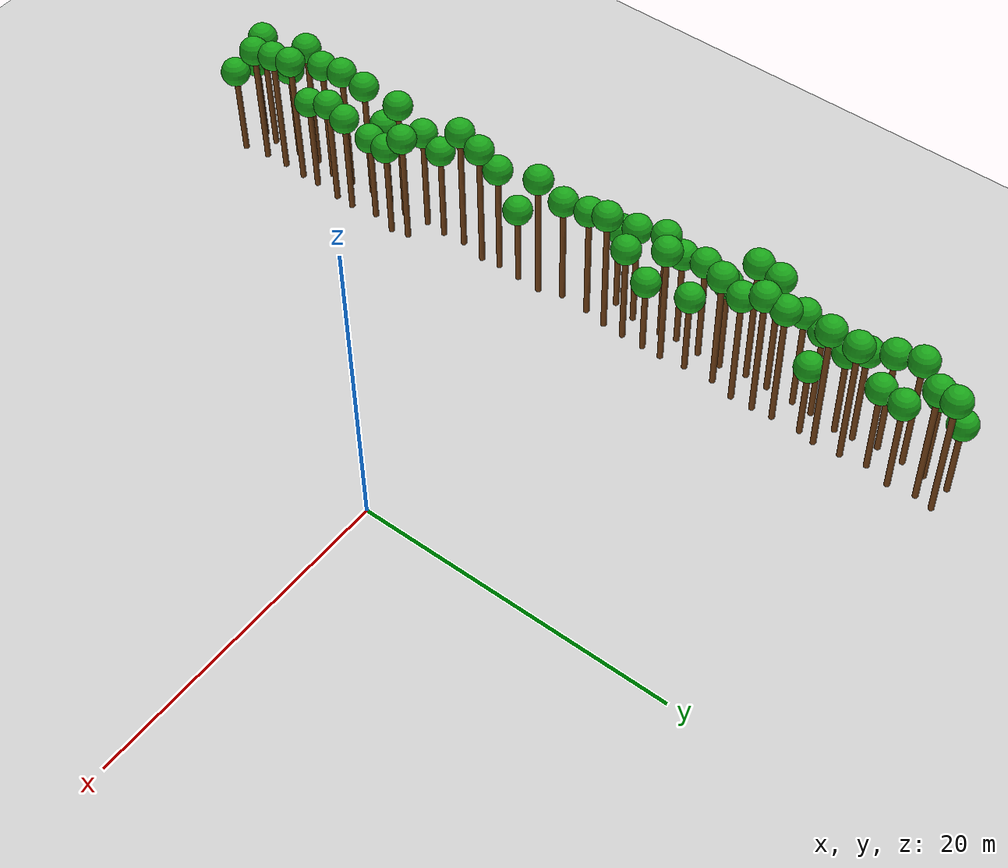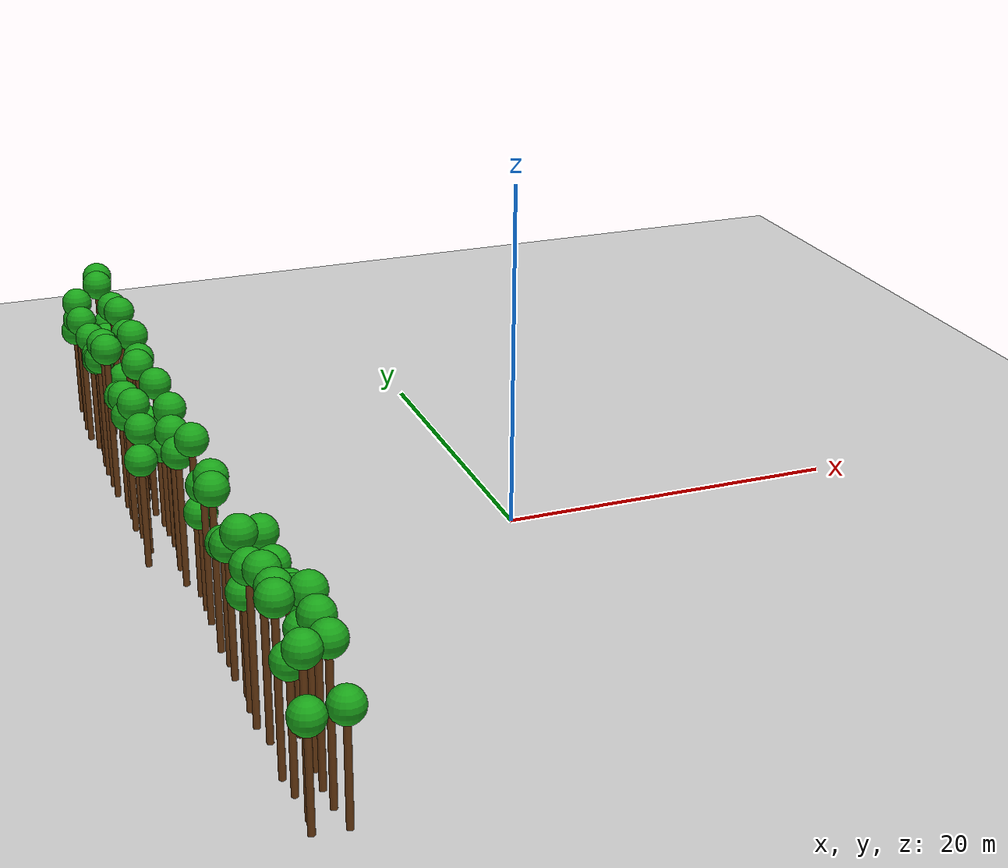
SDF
<sdf version="1.6">
 <world name="forest_world">
  <include><uri>model://sun</uri></include>
  <include><uri>model://ground_plane</uri></include>
  <model name="tree_120">
   <static>true</static>
   <link name="trunk">
    <collision name="collision">
     <pose>-20.72 1.77 2.95 0 0 0</pose>
     <geometry><cylinder><radius>0.18</radius><length>5.91</length></cylinder></geometry>
    </collision>
    <visual name="trunk_visual">
     <pose>-20.72 1.77 2.95 0 0 0</pose>
     <geometry><cylinder><radius>0.18</radius><length>5.91</length></cylinder></geometry>
     <material><ambient>0.35 0.20 0.05 1</ambient><diffuse>0.45 0.25 0.08 1</diffuse></material>
    </visual>
    <visual name="leaf_visual">
     <pose>-20.72 1.77 6.36 0 0 0</pose>
     <geometry><sphere><radius>0.9</radius></sphere></geometry>
     <material><ambient>0.05 0.45 0.05 1</ambient><diffuse>0.10 0.65 0.10 1</diffuse></material>
    </visual>
   </link>
  </model>
  <model name="tree_121">
   <static>true</static>
   <link name="trunk">
    <collision name="collision">
     <pose>-20.34 3.26 3.53 0 0 0</pose>
     <geometry><cylinder><radius>0.18</radius><length>7.06</length></cylinder></geometry>
    </collision>
    <visual name="trunk_visual">
     <pose>-20.34 3.26 3.53 0 0 0</pose>
     <geometry><cylinder><radius>0.18</radius><length>7.06</length></cylinder></geometry>
     <material><ambient>0.35 0.20 0.05 1</ambient><diffuse>0.45 0.25 0.08 1</diffuse></material>
    </visual>
    <visual name="leaf_visual">
     <pose>-20.34 3.26 7.51 0 0 0</pose>
     <geometry><sphere><radius>0.9</radius></sphere></geometry>
     <material><ambient>0.05 0.45 0.05 1</ambient><diffuse>0.10 0.65 0.10 1</diffuse></material>
    </visual>
   </link>
  </model>
  <model name="tree_122">
   <static>true</static>
   <link name="trunk">
    <collision name="collision">
     <pose>-20.33 5.22 3.88 0 0 0</pose>
     <geometry><cylinder><radius>0.18</radius><length>7.75</length></cylinder></geometry>
    </collision>
    <visual name="trunk_visual">
     <pose>-20.33 5.22 3.88 0 0 0</pose>
     <geometry><cylinder><radius>0.18</radius><length>7.75</length></cylinder></geometry>
     <material><ambient>0.35 0.20 0.05 1</ambient><diffuse>0.45 0.25 0.08 1</diffuse></material>
    </visual>
    <visual name="leaf_visual">
     <pose>-20.33 5.22 8.20 0 0 0</pose>
     <geometry><sphere><radius>0.9</radius></sphere></geometry>
     <material><ambient>0.05 0.45 0.05 1</ambient><diffuse>0.10 0.65 0.10 1</diffuse></material>
    </visual>
   </link>
  </model>
  <model name="tree_123">
   <static>true</static>
   <link name="trunk">
    <collision name="collision">
     <pose>-20.54 6.26 3.34 0 0 0</pose>
     <geometry><cylinder><radius>0.18</radius><length>6.67</length></cylinder></geometry>
    </collision>
    <visual name="trunk_visual">
     <pose>-20.54 6.26 3.34 0 0 0</pose>
     <geometry><cylinder><radius>0.18</radius><length>6.67</length></cylinder></geometry>
     <material><ambient>0.35 0.20 0.05 1</ambient><diffuse>0.45 0.25 0.08 1</diffuse></material>
    </visual>
    <visual name="leaf_visual">
     <pose>-20.54 6.26 7.12 0 0 0</pose>
     <geometry><sphere><radius>0.9</radius></sphere></geometry>
     <material><ambient>0.05 0.45 0.05 1</ambient><diffuse>0.10 0.65 0.10 1</diffuse></material>
    </visual>
   </link>
  </model>
  <model name="tree_124">
   <static>true</static>
   <link name="trunk">
    <collision name="collision">
     <pose>-20.40 7.87 3.58 0 0 0</pose>
     <geometry><cylinder><radius>0.18</radius><length>7.16</length></cylinder></geometry>
    </collision>
    <visual name="trunk_visual">
     <pose>-20.40 7.87 3.58 0 0 0</pose>
     <geometry><cylinder><radius>0.18</radius><length>7.16</length></cylinder></geometry>
     <material><ambient>0.35 0.20 0.05 1</ambient><diffuse>0.45 0.25 0.08 1</diffuse></material>
    </visual>
    <visual name="leaf_visual">
     <pose>-20.40 7.87 7.61 0 0 0</pose>
     <geometry><sphere><radius>0.9</radius></sphere></geometry>
     <material><ambient>0.05 0.45 0.05 1</ambient><diffuse>0.10 0.65 0.10 1</diffuse></material>
    </visual>
   </link>
  </model>
  <model name="tree_125">
   <static>true</static>
   <link name="trunk">
    <collision name="collision">
     <pose>-20.37 9.40 3.28 0 0 0</pose>
     <geometry><cylinder><radius>0.18</radius><length>6.55</length></cylinder></geometry>
    </collision>
    <visual name="trunk_visual">
     <pose>-20.37 9.40 3.28 0 0 0</pose>
     <geometry><cylinder><radius>0.18</radius><length>6.55</length></cylinder></geometry>
     <material><ambient>0.35 0.20 0.05 1</ambient><diffuse>0.45 0.25 0.08 1</diffuse></material>
    </visual>
    <visual name="leaf_visual">
     <pose>-20.37 9.40 7.00 0 0 0</pose>
     <geometry><sphere><radius>0.9</radius></sphere></geometry>
     <material><ambient>0.05 0.45 0.05 1</ambient><diffuse>0.10 0.65 0.10 1</diffuse></material>
    </visual>
   </link>
  </model>
  <model name="tree_126">
   <static>true</static>
   <link name="trunk">
    <collision name="collision">
     <pose>-20.68 11.04 4.43 0 0 0</pose>
     <geometry><cylinder><radius>0.18</radius><length>8.85</length></cylinder></geometry>
    </collision>
    <visual name="trunk_visual">
     <pose>-20.68 11.04 4.43 0 0 0</pose>
     <geometry><cylinder><radius>0.18</radius><length>8.85</length></cylinder></geometry>
     <material><ambient>0.35 0.20 0.05 1</ambient><diffuse>0.45 0.25 0.08 1</diffuse></material>
    </visual>
    <visual name="leaf_visual">
     <pose>-20.68 11.04 9.30 0 0 0</pose>
     <geometry><sphere><radius>0.9</radius></sphere></geometry>
     <material><ambient>0.05 0.45 0.05 1</ambient><diffuse>0.10 0.65 0.10 1</diffuse></material>
    </visual>
   </link>
  </model>
  <model name="tree_127">
   <static>true</static>
   <link name="trunk">
    <collision name="collision">
     <pose>-20.65 12.48 4.33 0 0 0</pose>
     <geometry><cylinder><radius>0.18</radius><length>8.65</length></cylinder></geometry>
    </collision>
    <visual name="trunk_visual">
     <pose>-20.65 12.48 4.33 0 0 0</pose>
     <geometry><cylinder><radius>0.18</radius><length>8.65</length></cylinder></geometry>
     <material><ambient>0.35 0.20 0.05 1</ambient><diffuse>0.45 0.25 0.08 1</diffuse></material>
    </visual>
    <visual name="leaf_visual">
     <pose>-20.65 12.48 9.10 0 0 0</pose>
     <geometry><sphere><radius>0.9</radius></sphere></geometry>
     <material><ambient>0.05 0.45 0.05 1</ambient><diffuse>0.10 0.65 0.10 1</diffuse></material>
    </visual>
   </link>
  </model>
  <model name="tree_128">
   <static>true</static>
   <link name="trunk">
    <collision name="collision">
     <pose>-20.62 14.25 3.54 0 0 0</pose>
     <geometry><cylinder><radius>0.18</radius><length>7.08</length></cylinder></geometry>
    </collision>
    <visual name="trunk_visual">
     <pose>-20.62 14.25 3.54 0 0 0</pose>
     <geometry><cylinder><radius>0.18</radius><length>7.08</length></cylinder></geometry>
     <material><ambient>0.35 0.20 0.05 1</ambient><diffuse>0.45 0.25 0.08 1</diffuse></material>
    </visual>
    <visual name="leaf_visual">
     <pose>-20.62 14.25 7.53 0 0 0</pose>
     <geometry><sphere><radius>0.9</radius></sphere></geometry>
     <material><ambient>0.05 0.45 0.05 1</ambient><diffuse>0.10 0.65 0.10 1</diffuse></material>
    </visual>
   </link>
  </model>
  <model name="tree_129">
   <static>true</static>
   <link name="trunk">
    <collision name="collision">
     <pose>-20.56 15.52 3.27 0 0 0</pose>
     <geometry><cylinder><radius>0.18</radius><length>6.53</length></cylinder></geometry>
    </collision>
    <visual name="trunk_visual">
     <pose>-20.56 15.52 3.27 0 0 0</pose>
     <geometry><cylinder><radius>0.18</radius><length>6.53</length></cylinder></geometry>
     <material><ambient>0.35 0.20 0.05 1</ambient><diffuse>0.45 0.25 0.08 1</diffuse></material>
    </visual>
    <visual name="leaf_visual">
     <pose>-20.56 15.52 6.98 0 0 0</pose>
     <geometry><sphere><radius>0.9</radius></sphere></geometry>
     <material><ambient>0.05 0.45 0.05 1</ambient><diffuse>0.10 0.65 0.10 1</diffuse></material>
    </visual>
   </link>
  </model>
  <model name="tree_130">
   <static>true</static>
   <link name="trunk">
    <collision name="collision">
     <pose>-20.35 17.23 3.08 0 0 0</pose>
     <geometry><cylinder><radius>0.18</radius><length>6.16</length></cylinder></geometry>
    </collision>
    <visual name="trunk_visual">
     <pose>-20.35 17.23 3.08 0 0 0</pose>
     <geometry><cylinder><radius>0.18</radius><length>6.16</length></cylinder></geometry>
     <material><ambient>0.35 0.20 0.05 1</ambient><diffuse>0.45 0.25 0.08 1</diffuse></material>
    </visual>
    <visual name="leaf_visual">
     <pose>-20.35 17.23 6.61 0 0 0</pose>
     <geometry><sphere><radius>0.9</radius></sphere></geometry>
     <material><ambient>0.05 0.45 0.05 1</ambient><diffuse>0.10 0.65 0.10 1</diffuse></material>
    </visual>
   </link>
  </model>
  <model name="tree_131">
   <static>true</static>
   <link name="trunk">
    <collision name="collision">
     <pose>-20.47 18.34 3.45 0 0 0</pose>
     <geometry><cylinder><radius>0.18</radius><length>6.91</length></cylinder></geometry>
    </collision>
    <visual name="trunk_visual">
     <pose>-20.47 18.34 3.45 0 0 0</pose>
     <geometry><cylinder><radius>0.18</radius><length>6.91</length></cylinder></geometry>
     <material><ambient>0.35 0.20 0.05 1</ambient><diffuse>0.45 0.25 0.08 1</diffuse></material>
    </visual>
    <visual name="leaf_visual">
     <pose>-20.47 18.34 7.36 0 0 0</pose>
     <geometry><sphere><radius>0.9</radius></sphere></geometry>
     <material><ambient>0.05 0.45 0.05 1</ambient><diffuse>0.10 0.65 0.10 1</diffuse></material>
    </visual>
   </link>
  </model>
  <model name="tree_132">
   <static>true</static>
   <link name="trunk">
    <collision name="collision">
     <pose>-20.74 19.82 3.75 0 0 0</pose>
     <geometry><cylinder><radius>0.18</radius><length>7.49</length></cylinder></geometry>
    </collision>
    <visual name="trunk_visual">
     <pose>-20.74 19.82 3.75 0 0 0</pose>
     <geometry><cylinder><radius>0.18</radius><length>7.49</length></cylinder></geometry>
     <material><ambient>0.35 0.20 0.05 1</ambient><diffuse>0.45 0.25 0.08 1</diffuse></material>
    </visual>
    <visual name="leaf_visual">
     <pose>-20.74 19.82 7.94 0 0 0</pose>
     <geometry><sphere><radius>0.9</radius></sphere></geometry>
     <material><ambient>0.05 0.45 0.05 1</ambient><diffuse>0.10 0.65 0.10 1</diffuse></material>
    </visual>
   </link>
  </model>
  <model name="tree_133">
   <static>true</static>
   <link name="trunk">
    <collision name="collision">
     <pose>-20.67 21.46 4.06 0 0 0</pose>
     <geometry><cylinder><radius>0.18</radius><length>8.11</length></cylinder></geometry>
    </collision>
    <visual name="trunk_visual">
     <pose>-20.67 21.46 4.06 0 0 0</pose>
     <geometry><cylinder><radius>0.18</radius><length>8.11</length></cylinder></geometry>
     <material><ambient>0.35 0.20 0.05 1</ambient><diffuse>0.45 0.25 0.08 1</diffuse></material>
    </visual>
    <visual name="leaf_visual">
     <pose>-20.67 21.46 8.56 0 0 0</pose>
     <geometry><sphere><radius>0.9</radius></sphere></geometry>
     <material><ambient>0.05 0.45 0.05 1</ambient><diffuse>0.10 0.65 0.10 1</diffuse></material>
    </visual>
   </link>
  </model>
  <model name="tree_134">
   <static>true</static>
   <link name="trunk">
    <collision name="collision">
     <pose>-20.52 22.90 3.26 0 0 0</pose>
     <geometry><cylinder><radius>0.18</radius><length>6.51</length></cylinder></geometry>
    </collision>
    <visual name="trunk_visual">
     <pose>-20.52 22.90 3.26 0 0 0</pose>
     <geometry><cylinder><radius>0.18</radius><length>6.51</length></cylinder></geometry>
     <material><ambient>0.35 0.20 0.05 1</ambient><diffuse>0.45 0.25 0.08 1</diffuse></material>
    </visual>
    <visual name="leaf_visual">
     <pose>-20.52 22.90 6.96 0 0 0</pose>
     <geometry><sphere><radius>0.9</radius></sphere></geometry>
     <material><ambient>0.05 0.45 0.05 1</ambient><diffuse>0.10 0.65 0.10 1</diffuse></material>
    </visual>
   </link>
  </model>
  <model name="tree_135">
   <static>true</static>
   <link name="trunk">
    <collision name="collision">
     <pose>-20.51 24.39 2.60 0 0 0</pose>
     <geometry><cylinder><radius>0.18</radius><length>5.19</length></cylinder></geometry>
    </collision>
    <visual name="trunk_visual">
     <pose>-20.51 24.39 2.60 0 0 0</pose>
     <geometry><cylinder><radius>0.18</radius><length>5.19</length></cylinder></geometry>
     <material><ambient>0.35 0.20 0.05 1</ambient><diffuse>0.45 0.25 0.08 1</diffuse></material>
    </visual>
    <visual name="leaf_visual">
     <pose>-20.51 24.39 5.64 0 0 0</pose>
     <geometry><sphere><radius>0.9</radius></sphere></geometry>
     <material><ambient>0.05 0.45 0.05 1</ambient><diffuse>0.10 0.65 0.10 1</diffuse></material>
    </visual>
   </link>
  </model>
  <model name="tree_136">
   <static>true</static>
   <link name="trunk">
    <collision name="collision">
     <pose>-19.06 -24.79 2.76 0 0 0</pose>
     <geometry><cylinder><radius>0.18</radius><length>5.53</length></cylinder></geometry>
    </collision>
    <visual name="trunk_visual">
     <pose>-19.06 -24.79 2.76 0 0 0</pose>
     <geometry><cylinder><radius>0.18</radius><length>5.53</length></cylinder></geometry>
     <material><ambient>0.35 0.20 0.05 1</ambient><diffuse>0.45 0.25 0.08 1</diffuse></material>
    </visual>
    <visual name="leaf_visual">
     <pose>-19.06 -24.79 5.98 0 0 0</pose>
     <geometry><sphere><radius>0.9</radius></sphere></geometry>
     <material><ambient>0.05 0.45 0.05 1</ambient><diffuse>0.10 0.65 0.10 1</diffuse></material>
    </visual>
   </link>
  </model>
  <model name="tree_137">
   <static>true</static>
   <link name="trunk">
    <collision name="collision">
     <pose>-18.87 -23.74 4.08 0 0 0</pose>
     <geometry><cylinder><radius>0.18</radius><length>8.15</length></cylinder></geometry>
    </collision>
    <visual name="trunk_visual">
     <pose>-18.87 -23.74 4.08 0 0 0</pose>
     <geometry><cylinder><radius>0.18</radius><length>8.15</length></cylinder></geometry>
     <material><ambient>0.35 0.20 0.05 1</ambient><diffuse>0.45 0.25 0.08 1</diffuse></material>
    </visual>
    <visual name="leaf_visual">
     <pose>-18.87 -23.74 8.60 0 0 0</pose>
     <geometry><sphere><radius>0.9</radius></sphere></geometry>
     <material><ambient>0.05 0.45 0.05 1</ambient><diffuse>0.10 0.65 0.10 1</diffuse></material>
    </visual>
   </link>
  </model>
  <model name="tree_138">
   <static>true</static>
   <link name="trunk">
    <collision name="collision">
     <pose>-18.97 -21.83 3.25 0 0 0</pose>
     <geometry><cylinder><radius>0.18</radius><length>6.51</length></cylinder></geometry>
    </collision>
    <visual name="trunk_visual">
     <pose>-18.97 -21.83 3.25 0 0 0</pose>
     <geometry><cylinder><radius>0.18</radius><length>6.51</length></cylinder></geometry>
     <material><ambient>0.35 0.20 0.05 1</ambient><diffuse>0.45 0.25 0.08 1</diffuse></material>
    </visual>
    <visual name="leaf_visual">
     <pose>-18.97 -21.83 6.96 0 0 0</pose>
     <geometry><sphere><radius>0.9</radius></sphere></geometry>
     <material><ambient>0.05 0.45 0.05 1</ambient><diffuse>0.10 0.65 0.10 1</diffuse></material>
    </visual>
   </link>
  </model>
  <model name="tree_139">
   <static>true</static>
   <link name="trunk">
    <collision name="collision">
     <pose>-19.15 -20.38 4.42 0 0 0</pose>
     <geometry><cylinder><radius>0.18</radius><length>8.84</length></cylinder></geometry>
    </collision>
    <visual name="trunk_visual">
     <pose>-19.15 -20.38 4.42 0 0 0</pose>
     <geometry><cylinder><radius>0.18</radius><length>8.84</length></cylinder></geometry>
     <material><ambient>0.35 0.20 0.05 1</ambient><diffuse>0.45 0.25 0.08 1</diffuse></material>
    </visual>
    <visual name="leaf_visual">
     <pose>-19.15 -20.38 9.29 0 0 0</pose>
     <geometry><sphere><radius>0.9</radius></sphere></geometry>
     <material><ambient>0.05 0.45 0.05 1</ambient><diffuse>0.10 0.65 0.10 1</diffuse></material>
    </visual>
   </link>
  </model>
  <model name="tree_140">
   <static>true</static>
   <link name="trunk">
    <collision name="collision">
     <pose>-18.78 -18.84 4.25 0 0 0</pose>
     <geometry><cylinder><radius>0.18</radius><length>8.50</length></cylinder></geometry>
    </collision>
    <visual name="trunk_visual">
     <pose>-18.78 -18.84 4.25 0 0 0</pose>
     <geometry><cylinder><radius>0.18</radius><length>8.50</length></cylinder></geometry>
     <material><ambient>0.35 0.20 0.05 1</ambient><diffuse>0.45 0.25 0.08 1</diffuse></material>
    </visual>
    <visual name="leaf_visual">
     <pose>-18.78 -18.84 8.95 0 0 0</pose>
     <geometry><sphere><radius>0.9</radius></sphere></geometry>
     <material><ambient>0.05 0.45 0.05 1</ambient><diffuse>0.10 0.65 0.10 1</diffuse></material>
    </visual>
   </link>
  </model>
  <model name="tree_141">
   <static>true</static>
   <link name="trunk">
    <collision name="collision">
     <pose>-18.92 -17.39 4.32 0 0 0</pose>
     <geometry><cylinder><radius>0.18</radius><length>8.65</length></cylinder></geometry>
    </collision>
    <visual name="trunk_visual">
     <pose>-18.92 -17.39 4.32 0 0 0</pose>
     <geometry><cylinder><radius>0.18</radius><length>8.65</length></cylinder></geometry>
     <material><ambient>0.35 0.20 0.05 1</ambient><diffuse>0.45 0.25 0.08 1</diffuse></material>
    </visual>
    <visual name="leaf_visual">
     <pose>-18.92 -17.39 9.10 0 0 0</pose>
     <geometry><sphere><radius>0.9</radius></sphere></geometry>
     <material><ambient>0.05 0.45 0.05 1</ambient><diffuse>0.10 0.65 0.10 1</diffuse></material>
    </visual>
   </link>
  </model>
  <model name="tree_142">
   <static>true</static>
   <link name="trunk">
    <collision name="collision">
     <pose>-19.18 -15.92 4.07 0 0 0</pose>
     <geometry><cylinder><radius>0.18</radius><length>8.14</length></cylinder></geometry>
    </collision>
    <visual name="trunk_visual">
     <pose>-19.18 -15.92 4.07 0 0 0</pose>
     <geometry><cylinder><radius>0.18</radius><length>8.14</length></cylinder></geometry>
     <material><ambient>0.35 0.20 0.05 1</ambient><diffuse>0.45 0.25 0.08 1</diffuse></material>
    </visual>
    <visual name="leaf_visual">
     <pose>-19.18 -15.92 8.59 0 0 0</pose>
     <geometry><sphere><radius>0.9</radius></sphere></geometry>
     <material><ambient>0.05 0.45 0.05 1</ambient><diffuse>0.10 0.65 0.10 1</diffuse></material>
    </visual>
   </link>
  </model>
  <model name="tree_143">
   <static>true</static>
   <link name="trunk">
    <collision name="collision">
     <pose>-19.11 -14.43 3.01 0 0 0</pose>
     <geometry><cylinder><radius>0.18</radius><length>6.02</length></cylinder></geometry>
    </collision>
    <visual name="trunk_visual">
     <pose>-19.11 -14.43 3.01 0 0 0</pose>
     <geometry><cylinder><radius>0.18</radius><length>6.02</length></cylinder></geometry>
     <material><ambient>0.35 0.20 0.05 1</ambient><diffuse>0.45 0.25 0.08 1</diffuse></material>
    </visual>
    <visual name="leaf_visual">
     <pose>-19.11 -14.43 6.47 0 0 0</pose>
     <geometry><sphere><radius>0.9</radius></sphere></geometry>
     <material><ambient>0.05 0.45 0.05 1</ambient><diffuse>0.10 0.65 0.10 1</diffuse></material>
    </visual>
   </link>
  </model>
  <model name="tree_144">
   <static>true</static>
   <link name="trunk">
    <collision name="collision">
     <pose>-18.90 -13.04 4.21 0 0 0</pose>
     <geometry><cylinder><radius>0.18</radius><length>8.41</length></cylinder></geometry>
    </collision>
    <visual name="trunk_visual">
     <pose>-18.90 -13.04 4.21 0 0 0</pose>
     <geometry><cylinder><radius>0.18</radius><length>8.41</length></cylinder></geometry>
     <material><ambient>0.35 0.20 0.05 1</ambient><diffuse>0.45 0.25 0.08 1</diffuse></material>
    </visual>
    <visual name="leaf_visual">
     <pose>-18.90 -13.04 8.86 0 0 0</pose>
     <geometry><sphere><radius>0.9</radius></sphere></geometry>
     <material><ambient>0.05 0.45 0.05 1</ambient><diffuse>0.10 0.65 0.10 1</diffuse></material>
    </visual>
   </link>
  </model>
  <model name="tree_145">
   <static>true</static>
   <link name="trunk">
    <collision name="collision">
     <pose>-19.11 -11.39 3.50 0 0 0</pose>
     <geometry><cylinder><radius>0.18</radius><length>7.00</length></cylinder></geometry>
    </collision>
    <visual name="trunk_visual">
     <pose>-19.11 -11.39 3.50 0 0 0</pose>
     <geometry><cylinder><radius>0.18</radius><length>7.00</length></cylinder></geometry>
     <material><ambient>0.35 0.20 0.05 1</ambient><diffuse>0.45 0.25 0.08 1</diffuse></material>
    </visual>
    <visual name="leaf_visual">
     <pose>-19.11 -11.39 7.45 0 0 0</pose>
     <geometry><sphere><radius>0.9</radius></sphere></geometry>
     <material><ambient>0.05 0.45 0.05 1</ambient><diffuse>0.10 0.65 0.10 1</diffuse></material>
    </visual>
   </link>
  </model>
  <model name="tree_146">
   <static>true</static>
   <link name="trunk">
    <collision name="collision">
     <pose>-19.02 -10.02 3.20 0 0 0</pose>
     <geometry><cylinder><radius>0.18</radius><length>6.40</length></cylinder></geometry>
    </collision>
    <visual name="trunk_visual">
     <pose>-19.02 -10.02 3.20 0 0 0</pose>
     <geometry><cylinder><radius>0.18</radius><length>6.40</length></cylinder></geometry>
     <material><ambient>0.35 0.20 0.05 1</ambient><diffuse>0.45 0.25 0.08 1</diffuse></material>
    </visual>
    <visual name="leaf_visual">
     <pose>-19.02 -10.02 6.85 0 0 0</pose>
     <geometry><sphere><radius>0.9</radius></sphere></geometry>
     <material><ambient>0.05 0.45 0.05 1</ambient><diffuse>0.10 0.65 0.10 1</diffuse></material>
    </visual>
   </link>
  </model>
  <model name="tree_147">
   <static>true</static>
   <link name="trunk">
    <collision name="collision">
     <pose>-19.12 -8.54 4.32 0 0 0</pose>
     <geometry><cylinder><radius>0.18</radius><length>8.63</length></cylinder></geometry>
    </collision>
    <visual name="trunk_visual">
     <pose>-19.12 -8.54 4.32 0 0 0</pose>
     <geometry><cylinder><radius>0.18</radius><length>8.63</length></cylinder></geometry>
     <material><ambient>0.35 0.20 0.05 1</ambient><diffuse>0.45 0.25 0.08 1</diffuse></material>
    </visual>
    <visual name="leaf_visual">
     <pose>-19.12 -8.54 9.08 0 0 0</pose>
     <geometry><sphere><radius>0.9</radius></sphere></geometry>
     <material><ambient>0.05 0.45 0.05 1</ambient><diffuse>0.10 0.65 0.10 1</diffuse></material>
    </visual>
   </link>
  </model>
  <model name="tree_148">
   <static>true</static>
   <link name="trunk">
    <collision name="collision">
     <pose>-18.77 -6.85 4.24 0 0 0</pose>
     <geometry><cylinder><radius>0.18</radius><length>8.49</length></cylinder></geometry>
    </collision>
    <visual name="trunk_visual">
     <pose>-18.77 -6.85 4.24 0 0 0</pose>
     <geometry><cylinder><radius>0.18</radius><length>8.49</length></cylinder></geometry>
     <material><ambient>0.35 0.20 0.05 1</ambient><diffuse>0.45 0.25 0.08 1</diffuse></material>
    </visual>
    <visual name="leaf_visual">
     <pose>-18.77 -6.85 8.94 0 0 0</pose>
     <geometry><sphere><radius>0.9</radius></sphere></geometry>
     <material><ambient>0.05 0.45 0.05 1</ambient><diffuse>0.10 0.65 0.10 1</diffuse></material>
    </visual>
   </link>
  </model>
  <model name="tree_149">
   <static>true</static>
   <link name="trunk">
    <collision name="collision">
     <pose>-18.94 -5.64 3.74 0 0 0</pose>
     <geometry><cylinder><radius>0.18</radius><length>7.49</length></cylinder></geometry>
    </collision>
    <visual name="trunk_visual">
     <pose>-18.94 -5.64 3.74 0 0 0</pose>
     <geometry><cylinder><radius>0.18</radius><length>7.49</length></cylinder></geometry>
     <material><ambient>0.35 0.20 0.05 1</ambient><diffuse>0.45 0.25 0.08 1</diffuse></material>
    </visual>
    <visual name="leaf_visual">
     <pose>-18.94 -5.64 7.94 0 0 0</pose>
     <geometry><sphere><radius>0.9</radius></sphere></geometry>
     <material><ambient>0.05 0.45 0.05 1</ambient><diffuse>0.10 0.65 0.10 1</diffuse></material>
    </visual>
   </link>
  </model>
  <model name="tree_150">
   <static>true</static>
   <link name="trunk">
    <collision name="collision">
     <pose>-18.84 -4.13 2.62 0 0 0</pose>
     <geometry><cylinder><radius>0.18</radius><length>5.24</length></cylinder></geometry>
    </collision>
    <visual name="trunk_visual">
     <pose>-18.84 -4.13 2.62 0 0 0</pose>
     <geometry><cylinder><radius>0.18</radius><length>5.24</length></cylinder></geometry>
     <material><ambient>0.35 0.20 0.05 1</ambient><diffuse>0.45 0.25 0.08 1</diffuse></material>
    </visual>
    <visual name="leaf_visual">
     <pose>-18.84 -4.13 5.69 0 0 0</pose>
     <geometry><sphere><radius>0.9</radius></sphere></geometry>
     <material><ambient>0.05 0.45 0.05 1</ambient><diffuse>0.10 0.65 0.10 1</diffuse></material>
    </visual>
   </link>
  </model>
  <model name="tree_151">
   <static>true</static>
   <link name="trunk">
    <collision name="collision">
     <pose>-18.77 -2.56 4.33 0 0 0</pose>
     <geometry><cylinder><radius>0.18</radius><length>8.66</length></cylinder></geometry>
    </collision>
    <visual name="trunk_visual">
     <pose>-18.77 -2.56 4.33 0 0 0</pose>
     <geometry><cylinder><radius>0.18</radius><length>8.66</length></cylinder></geometry>
     <material><ambient>0.35 0.20 0.05 1</ambient><diffuse>0.45 0.25 0.08 1</diffuse></material>
    </visual>
    <visual name="leaf_visual">
     <pose>-18.77 -2.56 9.11 0 0 0</pose>
     <geometry><sphere><radius>0.9</radius></sphere></geometry>
     <material><ambient>0.05 0.45 0.05 1</ambient><diffuse>0.10 0.65 0.10 1</diffuse></material>
    </visual>
   </link>
  </model>
  <model name="tree_152">
   <static>true</static>
   <link name="trunk">
    <collision name="collision">
     <pose>-19.25 -1.14 3.70 0 0 0</pose>
     <geometry><cylinder><radius>0.18</radius><length>7.39</length></cylinder></geometry>
    </collision>
    <visual name="trunk_visual">
     <pose>-19.25 -1.14 3.70 0 0 0</pose>
     <geometry><cylinder><radius>0.18</radius><length>7.39</length></cylinder></geometry>
     <material><ambient>0.35 0.20 0.05 1</ambient><diffuse>0.45 0.25 0.08 1</diffuse></material>
    </visual>
    <visual name="leaf_visual">
     <pose>-19.25 -1.14 7.84 0 0 0</pose>
     <geometry><sphere><radius>0.9</radius></sphere></geometry>
     <material><ambient>0.05 0.45 0.05 1</ambient><diffuse>0.10 0.65 0.10 1</diffuse></material>
    </visual>
   </link>
  </model>
  <model name="tree_153">
   <static>true</static>
   <link name="trunk">
    <collision name="collision">
     <pose>-19.16 0.73 3.90 0 0 0</pose>
     <geometry><cylinder><radius>0.18</radius><length>7.80</length></cylinder></geometry>
    </collision>
    <visual name="trunk_visual">
     <pose>-19.16 0.73 3.90 0 0 0</pose>
     <geometry><cylinder><radius>0.18</radius><length>7.80</length></cylinder></geometry>
     <material><ambient>0.35 0.20 0.05 1</ambient><diffuse>0.45 0.25 0.08 1</diffuse></material>
    </visual>
    <visual name="leaf_visual">
     <pose>-19.16 0.73 8.25 0 0 0</pose>
     <geometry><sphere><radius>0.9</radius></sphere></geometry>
     <material><ambient>0.05 0.45 0.05 1</ambient><diffuse>0.10 0.65 0.10 1</diffuse></material>
    </visual>
   </link>
  </model>
  <model name="tree_154">
   <static>true</static>
   <link name="trunk">
    <collision name="collision">
     <pose>-18.92 2.16 4.25 0 0 0</pose>
     <geometry><cylinder><radius>0.18</radius><length>8.51</length></cylinder></geometry>
    </collision>
    <visual name="trunk_visual">
     <pose>-18.92 2.16 4.25 0 0 0</pose>
     <geometry><cylinder><radius>0.18</radius><length>8.51</length></cylinder></geometry>
     <material><ambient>0.35 0.20 0.05 1</ambient><diffuse>0.45 0.25 0.08 1</diffuse></material>
    </visual>
    <visual name="leaf_visual">
     <pose>-18.92 2.16 8.96 0 0 0</pose>
     <geometry><sphere><radius>0.9</radius></sphere></geometry>
     <material><ambient>0.05 0.45 0.05 1</ambient><diffuse>0.10 0.65 0.10 1</diffuse></material>
    </visual>
   </link>
  </model>
  <model name="tree_155">
   <static>true</static>
   <link name="trunk">
    <collision name="collision">
     <pose>-18.86 3.55 3.39 0 0 0</pose>
     <geometry><cylinder><radius>0.18</radius><length>6.77</length></cylinder></geometry>
    </collision>
    <visual name="trunk_visual">
     <pose>-18.86 3.55 3.39 0 0 0</pose>
     <geometry><cylinder><radius>0.18</radius><length>6.77</length></cylinder></geometry>
     <material><ambient>0.35 0.20 0.05 1</ambient><diffuse>0.45 0.25 0.08 1</diffuse></material>
    </visual>
    <visual name="leaf_visual">
     <pose>-18.86 3.55 7.22 0 0 0</pose>
     <geometry><sphere><radius>0.9</radius></sphere></geometry>
     <material><ambient>0.05 0.45 0.05 1</ambient><diffuse>0.10 0.65 0.10 1</diffuse></material>
    </visual>
   </link>
  </model>
  <model name="tree_156">
   <static>true</static>
   <link name="trunk">
    <collision name="collision">
     <pose>-18.86 5.00 2.52 0 0 0</pose>
     <geometry><cylinder><radius>0.18</radius><length>5.03</length></cylinder></geometry>
    </collision>
    <visual name="trunk_visual">
     <pose>-18.86 5.00 2.52 0 0 0</pose>
     <geometry><cylinder><radius>0.18</radius><length>5.03</length></cylinder></geometry>
     <material><ambient>0.35 0.20 0.05 1</ambient><diffuse>0.45 0.25 0.08 1</diffuse></material>
    </visual>
    <visual name="leaf_visual">
     <pose>-18.86 5.00 5.48 0 0 0</pose>
     <geometry><sphere><radius>0.9</radius></sphere></geometry>
     <material><ambient>0.05 0.45 0.05 1</ambient><diffuse>0.10 0.65 0.10 1</diffuse></material>
    </visual>
   </link>
  </model>
  <model name="tree_157">
   <static>true</static>
   <link name="trunk">
    <collision name="collision">
     <pose>-18.87 6.26 4.18 0 0 0</pose>
     <geometry><cylinder><radius>0.18</radius><length>8.35</length></cylinder></geometry>
    </collision>
    <visual name="trunk_visual">
     <pose>-18.87 6.26 4.18 0 0 0</pose>
     <geometry><cylinder><radius>0.18</radius><length>8.35</length></cylinder></geometry>
     <material><ambient>0.35 0.20 0.05 1</ambient><diffuse>0.45 0.25 0.08 1</diffuse></material>
    </visual>
    <visual name="leaf_visual">
     <pose>-18.87 6.26 8.80 0 0 0</pose>
     <geometry><sphere><radius>0.9</radius></sphere></geometry>
     <material><ambient>0.05 0.45 0.05 1</ambient><diffuse>0.10 0.65 0.10 1</diffuse></material>
    </visual>
   </link>
  </model>
  <model name="tree_158">
   <static>true</static>
   <link name="trunk">
    <collision name="collision">
     <pose>-19.08 7.83 2.71 0 0 0</pose>
     <geometry><cylinder><radius>0.18</radius><length>5.43</length></cylinder></geometry>
    </collision>
    <visual name="trunk_visual">
     <pose>-19.08 7.83 2.71 0 0 0</pose>
     <geometry><cylinder><radius>0.18</radius><length>5.43</length></cylinder></geometry>
     <material><ambient>0.35 0.20 0.05 1</ambient><diffuse>0.45 0.25 0.08 1</diffuse></material>
    </visual>
    <visual name="leaf_visual">
     <pose>-19.08 7.83 5.88 0 0 0</pose>
     <geometry><sphere><radius>0.9</radius></sphere></geometry>
     <material><ambient>0.05 0.45 0.05 1</ambient><diffuse>0.10 0.65 0.10 1</diffuse></material>
    </visual>
   </link>
  </model>
  <model name="tree_159">
   <static>true</static>
   <link name="trunk">
    <collision name="collision">
     <pose>-19.19 9.72 4.10 0 0 0</pose>
     <geometry><cylinder><radius>0.18</radius><length>8.21</length></cylinder></geometry>
    </collision>
    <visual name="trunk_visual">
     <pose>-19.19 9.72 4.10 0 0 0</pose>
     <geometry><cylinder><radius>0.18</radius><length>8.21</length></cylinder></geometry>
     <material><ambient>0.35 0.20 0.05 1</ambient><diffuse>0.45 0.25 0.08 1</diffuse></material>
    </visual>
    <visual name="leaf_visual">
     <pose>-19.19 9.72 8.66 0 0 0</pose>
     <geometry><sphere><radius>0.9</radius></sphere></geometry>
     <material><ambient>0.05 0.45 0.05 1</ambient><diffuse>0.10 0.65 0.10 1</diffuse></material>
    </visual>
   </link>
  </model>
  <model name="tree_160">
   <static>true</static>
   <link name="trunk">
    <collision name="collision">
     <pose>-18.83 11.24 3.99 0 0 0</pose>
     <geometry><cylinder><radius>0.18</radius><length>7.98</length></cylinder></geometry>
    </collision>
    <visual name="trunk_visual">
     <pose>-18.83 11.24 3.99 0 0 0</pose>
     <geometry><cylinder><radius>0.18</radius><length>7.98</length></cylinder></geometry>
     <material><ambient>0.35 0.20 0.05 1</ambient><diffuse>0.45 0.25 0.08 1</diffuse></material>
    </visual>
    <visual name="leaf_visual">
     <pose>-18.83 11.24 8.43 0 0 0</pose>
     <geometry><sphere><radius>0.9</radius></sphere></geometry>
     <material><ambient>0.05 0.45 0.05 1</ambient><diffuse>0.10 0.65 0.10 1</diffuse></material>
    </visual>
   </link>
  </model>
  <model name="tree_161">
   <static>true</static>
   <link name="trunk">
    <collision name="collision">
     <pose>-18.86 12.64 4.44 0 0 0</pose>
     <geometry><cylinder><radius>0.18</radius><length>8.89</length></cylinder></geometry>
    </collision>
    <visual name="trunk_visual">
     <pose>-18.86 12.64 4.44 0 0 0</pose>
     <geometry><cylinder><radius>0.18</radius><length>8.89</length></cylinder></geometry>
     <material><ambient>0.35 0.20 0.05 1</ambient><diffuse>0.45 0.25 0.08 1</diffuse></material>
    </visual>
    <visual name="leaf_visual">
     <pose>-18.86 12.64 9.34 0 0 0</pose>
     <geometry><sphere><radius>0.9</radius></sphere></geometry>
     <material><ambient>0.05 0.45 0.05 1</ambient><diffuse>0.10 0.65 0.10 1</diffuse></material>
    </visual>
   </link>
  </model>
  <model name="tree_162">
   <static>true</static>
   <link name="trunk">
    <collision name="collision">
     <pose>-18.99 13.91 4.26 0 0 0</pose>
     <geometry><cylinder><radius>0.18</radius><length>8.53</length></cylinder></geometry>
    </collision>
    <visual name="trunk_visual">
     <pose>-18.99 13.91 4.26 0 0 0</pose>
     <geometry><cylinder><radius>0.18</radius><length>8.53</length></cylinder></geometry>
     <material><ambient>0.35 0.20 0.05 1</ambient><diffuse>0.45 0.25 0.08 1</diffuse></material>
    </visual>
    <visual name="leaf_visual">
     <pose>-18.99 13.91 8.98 0 0 0</pose>
     <geometry><sphere><radius>0.9</radius></sphere></geometry>
     <material><ambient>0.05 0.45 0.05 1</ambient><diffuse>0.10 0.65 0.10 1</diffuse></material>
    </visual>
   </link>
  </model>
  <model name="tree_163">
   <static>true</static>
   <link name="trunk">
    <collision name="collision">
     <pose>-19.07 15.71 2.54 0 0 0</pose>
     <geometry><cylinder><radius>0.18</radius><length>5.09</length></cylinder></geometry>
    </collision>
    <visual name="trunk_visual">
     <pose>-19.07 15.71 2.54 0 0 0</pose>
     <geometry><cylinder><radius>0.18</radius><length>5.09</length></cylinder></geometry>
     <material><ambient>0.35 0.20 0.05 1</ambient><diffuse>0.45 0.25 0.08 1</diffuse></material>
    </visual>
    <visual name="leaf_visual">
     <pose>-19.07 15.71 5.54 0 0 0</pose>
     <geometry><sphere><radius>0.9</radius></sphere></geometry>
     <material><ambient>0.05 0.45 0.05 1</ambient><diffuse>0.10 0.65 0.10 1</diffuse></material>
    </visual>
   </link>
  </model>
  <model name="tree_164">
   <static>true</static>
   <link name="trunk">
    <collision name="collision">
     <pose>-18.86 16.76 4.46 0 0 0</pose>
     <geometry><cylinder><radius>0.18</radius><length>8.93</length></cylinder></geometry>
    </collision>
    <visual name="trunk_visual">
     <pose>-18.86 16.76 4.46 0 0 0</pose>
     <geometry><cylinder><radius>0.18</radius><length>8.93</length></cylinder></geometry>
     <material><ambient>0.35 0.20 0.05 1</ambient><diffuse>0.45 0.25 0.08 1</diffuse></material>
    </visual>
    <visual name="leaf_visual">
     <pose>-18.86 16.76 9.38 0 0 0</pose>
     <geometry><sphere><radius>0.9</radius></sphere></geometry>
     <material><ambient>0.05 0.45 0.05 1</ambient><diffuse>0.10 0.65 0.10 1</diffuse></material>
    </visual>
   </link>
  </model>
  <model name="tree_165">
   <static>true</static>
   <link name="trunk">
    <collision name="collision">
     <pose>-19.00 18.41 4.35 0 0 0</pose>
     <geometry><cylinder><radius>0.18</radius><length>8.69</length></cylinder></geometry>
    </collision>
    <visual name="trunk_visual">
     <pose>-19.00 18.41 4.35 0 0 0</pose>
     <geometry><cylinder><radius>0.18</radius><length>8.69</length></cylinder></geometry>
     <material><ambient>0.35 0.20 0.05 1</ambient><diffuse>0.45 0.25 0.08 1</diffuse></material>
    </visual>
    <visual name="leaf_visual">
     <pose>-19.00 18.41 9.14 0 0 0</pose>
     <geometry><sphere><radius>0.9</radius></sphere></geometry>
     <material><ambient>0.05 0.45 0.05 1</ambient><diffuse>0.10 0.65 0.10 1</diffuse></material>
    </visual>
   </link>
  </model>
  <model name="tree_166">
   <static>true</static>
   <link name="trunk">
    <collision name="collision">
     <pose>-19.25 20.00 3.08 0 0 0</pose>
     <geometry><cylinder><radius>0.18</radius><length>6.16</length></cylinder></geometry>
    </collision>
    <visual name="trunk_visual">
     <pose>-19.25 20.00 3.08 0 0 0</pose>
     <geometry><cylinder><radius>0.18</radius><length>6.16</length></cylinder></geometry>
     <material><ambient>0.35 0.20 0.05 1</ambient><diffuse>0.45 0.25 0.08 1</diffuse></material>
    </visual>
    <visual name="leaf_visual">
     <pose>-19.25 20.00 6.61 0 0 0</pose>
     <geometry><sphere><radius>0.9</radius></sphere></geometry>
     <material><ambient>0.05 0.45 0.05 1</ambient><diffuse>0.10 0.65 0.10 1</diffuse></material>
    </visual>
   </link>
  </model>
  <model name="tree_167">
   <static>true</static>
   <link name="trunk">
    <collision name="collision">
     <pose>-18.82 21.59 3.23 0 0 0</pose>
     <geometry><cylinder><radius>0.18</radius><length>6.45</length></cylinder></geometry>
    </collision>
    <visual name="trunk_visual">
     <pose>-18.82 21.59 3.23 0 0 0</pose>
     <geometry><cylinder><radius>0.18</radius><length>6.45</length></cylinder></geometry>
     <material><ambient>0.35 0.20 0.05 1</ambient><diffuse>0.45 0.25 0.08 1</diffuse></material>
    </visual>
    <visual name="leaf_visual">
     <pose>-18.82 21.59 6.90 0 0 0</pose>
     <geometry><sphere><radius>0.9</radius></sphere></geometry>
     <material><ambient>0.05 0.45 0.05 1</ambient><diffuse>0.10 0.65 0.10 1</diffuse></material>
    </visual>
   </link>
  </model>
  <model name="tree_168">
   <static>true</static>
   <link name="trunk">
    <collision name="collision">
     <pose>-19.08 23.23 4.25 0 0 0</pose>
     <geometry><cylinder><radius>0.18</radius><length>8.50</length></cylinder></geometry>
    </collision>
    <visual name="trunk_visual">
     <pose>-19.08 23.23 4.25 0 0 0</pose>
     <geometry><cylinder><radius>0.18</radius><length>8.50</length></cylinder></geometry>
     <material><ambient>0.35 0.20 0.05 1</ambient><diffuse>0.45 0.25 0.08 1</diffuse></material>
    </visual>
    <visual name="leaf_visual">
     <pose>-19.08 23.23 8.95 0 0 0</pose>
     <geometry><sphere><radius>0.9</radius></sphere></geometry>
     <material><ambient>0.05 0.45 0.05 1</ambient><diffuse>0.10 0.65 0.10 1</diffuse></material>
    </visual>
   </link>
  </model>
  <model name="tree_169">
   <static>true</static>
   <link name="trunk">
    <collision name="collision">
     <pose>-18.87 24.35 4.32 0 0 0</pose>
     <geometry><cylinder><radius>0.18</radius><length>8.64</length></cylinder></geometry>
    </collision>
    <visual name="trunk_visual">
     <pose>-18.87 24.35 4.32 0 0 0</pose>
     <geometry><cylinder><radius>0.18</radius><length>8.64</length></cylinder></geometry>
     <material><ambient>0.35 0.20 0.05 1</ambient><diffuse>0.45 0.25 0.08 1</diffuse></material>
    </visual>
    <visual name="leaf_visual">
     <pose>-18.87 24.35 9.09 0 0 0</pose>
     <geometry><sphere><radius>0.9</radius></sphere></geometry>
     <material><ambient>0.05 0.45 0.05 1</ambient><diffuse>0.10 0.65 0.10 1</diffuse></material>
    </visual>
   </link>
  </model>
  <model name="tree_170">
   <static>true</static>
   <link name="trunk">
    <collision name="collision">
     <pose>-17.37 -24.94 2.90 0 0 0</pose>
     <geometry><cylinder><radius>0.18</radius><length>5.81</length></cylinder></geometry>
    </collision>
    <visual name="trunk_visual">
     <pose>-17.37 -24.94 2.90 0 0 0</pose>
     <geometry><cylinder><radius>0.18</radius><length>5.81</length></cylinder></geometry>
     <material><ambient>0.35 0.20 0.05 1</ambient><diffuse>0.45 0.25 0.08 1</diffuse></material>
    </visual>
    <visual name="leaf_visual">
     <pose>-17.37 -24.94 6.26 0 0 0</pose>
     <geometry><sphere><radius>0.9</radius></sphere></geometry>
     <material><ambient>0.05 0.45 0.05 1</ambient><diffuse>0.10 0.65 0.10 1</diffuse></material>
    </visual>
   </link>
  </model>
  <model name="tree_171">
   <static>true</static>
   <link name="trunk">
    <collision name="collision">
     <pose>-17.61 -23.30 4.08 0 0 0</pose>
     <geometry><cylinder><radius>0.18</radius><length>8.15</length></cylinder></geometry>
    </collision>
    <visual name="trunk_visual">
     <pose>-17.61 -23.30 4.08 0 0 0</pose>
     <geometry><cylinder><radius>0.18</radius><length>8.15</length></cylinder></geometry>
     <material><ambient>0.35 0.20 0.05 1</ambient><diffuse>0.45 0.25 0.08 1</diffuse></material>
    </visual>
    <visual name="leaf_visual">
     <pose>-17.61 -23.30 8.60 0 0 0</pose>
     <geometry><sphere><radius>0.9</radius></sphere></geometry>
     <material><ambient>0.05 0.45 0.05 1</ambient><diffuse>0.10 0.65 0.10 1</diffuse></material>
    </visual>
   </link>
  </model>
  <model name="tree_172">
   <static>true</static>
   <link name="trunk">
    <collision name="collision">
     <pose>-17.67 -21.79 4.25 0 0 0</pose>
     <geometry><cylinder><radius>0.18</radius><length>8.49</length></cylinder></geometry>
    </collision>
    <visual name="trunk_visual">
     <pose>-17.67 -21.79 4.25 0 0 0</pose>
     <geometry><cylinder><radius>0.18</radius><length>8.49</length></cylinder></geometry>
     <material><ambient>0.35 0.20 0.05 1</ambient><diffuse>0.45 0.25 0.08 1</diffuse></material>
    </visual>
    <visual name="leaf_visual">
     <pose>-17.67 -21.79 8.94 0 0 0</pose>
     <geometry><sphere><radius>0.9</radius></sphere></geometry>
     <material><ambient>0.05 0.45 0.05 1</ambient><diffuse>0.10 0.65 0.10 1</diffuse></material>
    </visual>
   </link>
  </model>
  <model name="tree_173">
   <static>true</static>
   <link name="trunk">
    <collision name="collision">
     <pose>-17.59 -20.27 4.44 0 0 0</pose>
     <geometry><cylinder><radius>0.18</radius><length>8.88</length></cylinder></geometry>
    </collision>
    <visual name="trunk_visual">
     <pose>-17.59 -20.27 4.44 0 0 0</pose>
     <geometry><cylinder><radius>0.18</radius><length>8.88</length></cylinder></geometry>
     <material><ambient>0.35 0.20 0.05 1</ambient><diffuse>0.45 0.25 0.08 1</diffuse></material>
    </visual>
    <visual name="leaf_visual">
     <pose>-17.59 -20.27 9.33 0 0 0</pose>
     <geometry><sphere><radius>0.9</radius></sphere></geometry>
     <material><ambient>0.05 0.45 0.05 1</ambient><diffuse>0.10 0.65 0.10 1</diffuse></material>
    </visual>
   </link>
  </model>
  <model name="tree_174">
   <static>true</static>
   <link name="trunk">
    <collision name="collision">
     <pose>-17.61 -19.08 3.15 0 0 0</pose>
     <geometry><cylinder><radius>0.18</radius><length>6.31</length></cylinder></geometry>
    </collision>
    <visual name="trunk_visual">
     <pose>-17.61 -19.08 3.15 0 0 0</pose>
     <geometry><cylinder><radius>0.18</radius><length>6.31</length></cylinder></geometry>
     <material><ambient>0.35 0.20 0.05 1</ambient><diffuse>0.45 0.25 0.08 1</diffuse></material>
    </visual>
    <visual name="leaf_visual">
     <pose>-17.61 -19.08 6.76 0 0 0</pose>
     <geometry><sphere><radius>0.9</radius></sphere></geometry>
     <material><ambient>0.05 0.45 0.05 1</ambient><diffuse>0.10 0.65 0.10 1</diffuse></material>
    </visual>
   </link>
  </model>
  <model name="tree_175">
   <static>true</static>
   <link name="trunk">
    <collision name="collision">
     <pose>-17.46 -17.32 3.59 0 0 0</pose>
     <geometry><cylinder><radius>0.18</radius><length>7.19</length></cylinder></geometry>
    </collision>
    <visual name="trunk_visual">
     <pose>-17.46 -17.32 3.59 0 0 0</pose>
     <geometry><cylinder><radius>0.18</radius><length>7.19</length></cylinder></geometry>
     <material><ambient>0.35 0.20 0.05 1</ambient><diffuse>0.45 0.25 0.08 1</diffuse></material>
    </visual>
    <visual name="leaf_visual">
     <pose>-17.46 -17.32 7.64 0 0 0</pose>
     <geometry><sphere><radius>0.9</radius></sphere></geometry>
     <material><ambient>0.05 0.45 0.05 1</ambient><diffuse>0.10 0.65 0.10 1</diffuse></material>
    </visual>
   </link>
  </model>
  <model name="tree_176">
   <static>true</static>
   <link name="trunk">
    <collision name="collision">
     <pose>-17.41 -16.06 3.40 0 0 0</pose>
     <geometry><cylinder><radius>0.18</radius><length>6.79</length></cylinder></geometry>
    </collision>
    <visual name="trunk_visual">
     <pose>-17.41 -16.06 3.40 0 0 0</pose>
     <geometry><cylinder><radius>0.18</radius><length>6.79</length></cylinder></geometry>
     <material><ambient>0.35 0.20 0.05 1</ambient><diffuse>0.45 0.25 0.08 1</diffuse></material>
    </visual>
    <visual name="leaf_visual">
     <pose>-17.41 -16.06 7.24 0 0 0</pose>
     <geometry><sphere><radius>0.9</radius></sphere></geometry>
     <material><ambient>0.05 0.45 0.05 1</ambient><diffuse>0.10 0.65 0.10 1</diffuse></material>
    </visual>
   </link>
  </model>
  <model name="tree_177">
   <static>true</static>
   <link name="trunk">
    <collision name="collision">
     <pose>-17.70 -14.38 2.98 0 0 0</pose>
     <geometry><cylinder><radius>0.18</radius><length>5.96</length></cylinder></geometry>
    </collision>
    <visual name="trunk_visual">
     <pose>-17.70 -14.38 2.98 0 0 0</pose>
     <geometry><cylinder><radius>0.18</radius><length>5.96</length></cylinder></geometry>
     <material><ambient>0.35 0.20 0.05 1</ambient><diffuse>0.45 0.25 0.08 1</diffuse></material>
    </visual>
    <visual name="leaf_visual">
     <pose>-17.70 -14.38 6.41 0 0 0</pose>
     <geometry><sphere><radius>0.9</radius></sphere></geometry>
     <material><ambient>0.05 0.45 0.05 1</ambient><diffuse>0.10 0.65 0.10 1</diffuse></material>
    </visual>
   </link>
  </model>
  <model name="tree_178">
   <static>true</static>
   <link name="trunk">
    <collision name="collision">
     <pose>-17.30 -12.77 3.19 0 0 0</pose>
     <geometry><cylinder><radius>0.18</radius><length>6.38</length></cylinder></geometry>
    </collision>
    <visual name="trunk_visual">
     <pose>-17.30 -12.77 3.19 0 0 0</pose>
     <geometry><cylinder><radius>0.18</radius><length>6.38</length></cylinder></geometry>
     <material><ambient>0.35 0.20 0.05 1</ambient><diffuse>0.45 0.25 0.08 1</diffuse></material>
    </visual>
    <visual name="leaf_visual">
     <pose>-17.30 -12.77 6.83 0 0 0</pose>
     <geometry><sphere><radius>0.9</radius></sphere></geometry>
     <material><ambient>0.05 0.45 0.05 1</ambient><diffuse>0.10 0.65 0.10 1</diffuse></material>
    </visual>
   </link>
  </model>
  <model name="tree_179">
   <static>true</static>
   <link name="trunk">
    <collision name="collision">
     <pose>-17.54 -11.67 3.77 0 0 0</pose>
     <geometry><cylinder><radius>0.18</radius><length>7.54</length></cylinder></geometry>
    </collision>
    <visual name="trunk_visual">
     <pose>-17.54 -11.67 3.77 0 0 0</pose>
     <geometry><cylinder><radius>0.18</radius><length>7.54</length></cylinder></geometry>
     <material><ambient>0.35 0.20 0.05 1</ambient><diffuse>0.45 0.25 0.08 1</diffuse></material>
    </visual>
    <visual name="leaf_visual">
     <pose>-17.54 -11.67 7.99 0 0 0</pose>
     <geometry><sphere><radius>0.9</radius></sphere></geometry>
     <material><ambient>0.05 0.45 0.05 1</ambient><diffuse>0.10 0.65 0.10 1</diffuse></material>
    </visual>
   </link>
  </model>
 </world>
</sdf>
